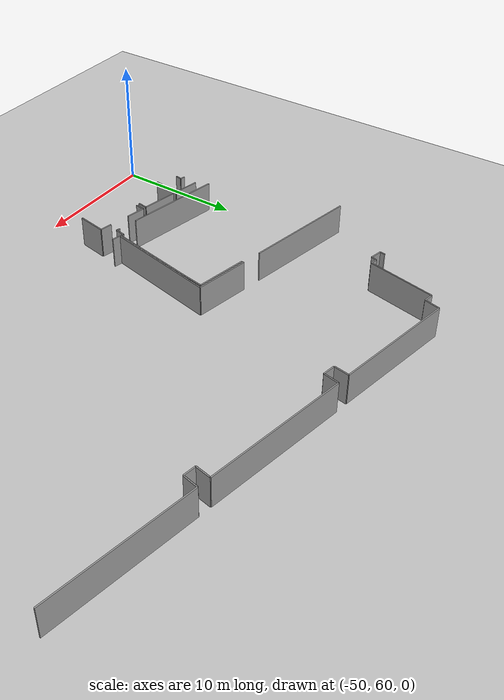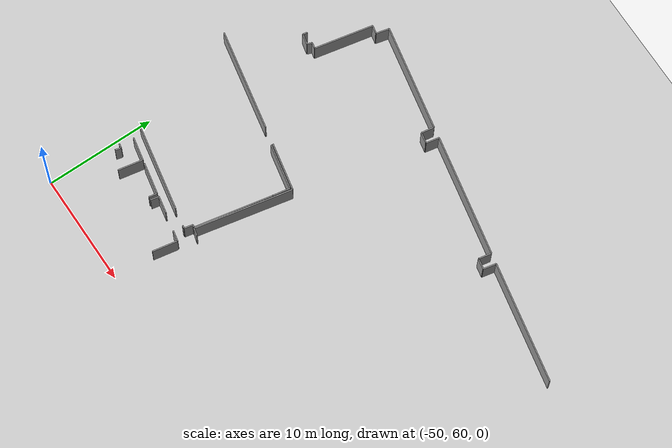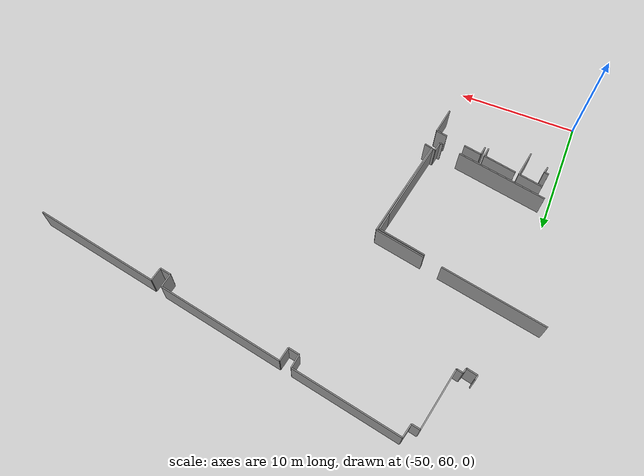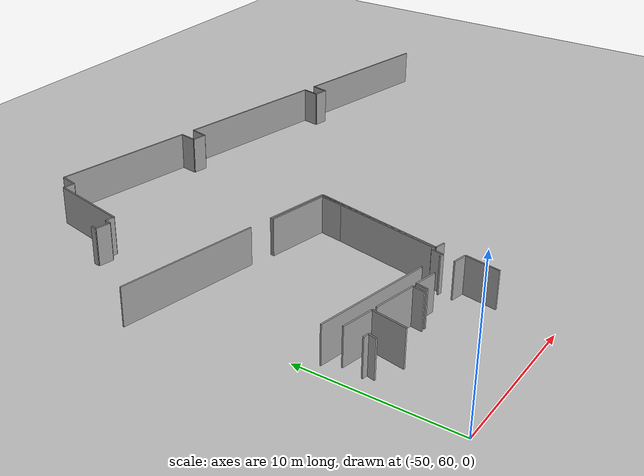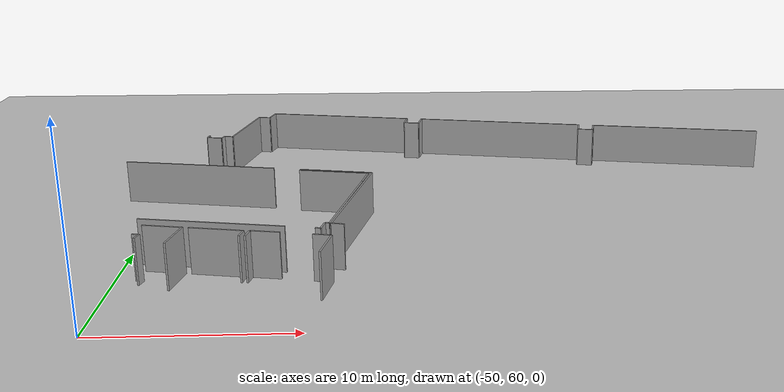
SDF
<sdf version="1.6">
 <world name="default">
  <model name="ground_plane">
   <static>1</static>
   <link name="link">
    <collision name="collision">
     <geometry><plane><normal>0 0 1</normal><size>100 100</size></plane></geometry>
     <surface><friction><ode><mu>100</mu><mu2>50</mu2></ode></friction></surface>
    </collision>
    <visual name="visual">
     <cast_shadows>0</cast_shadows>
     <geometry><plane><normal>0 0 1</normal><size>100 100</size></plane></geometry>
     <material>
      <script><uri>file://media/materials/scripts/gazebo.material</uri><name>Gazebo/Grey</name></script>
     </material>
    </visual>
   </link>
  </model>
  <model name="0510045922_A-40">
   <static>1</static>
   <link name="Wall_113">
    <collision name="Wall_113_Collision">
     <geometry><box><size>4.13901485271 0.1 2.5</size></box></geometry>
     <pose>2.06950742636 0 1.25 0 0 0</pose>
    </collision>
    <visual name="Wall_113_Visual">
     <pose>2.06950742636 0 1.25 0 0 0</pose>
     <geometry><box><size>4.13901485271 0.1 2.5</size></box></geometry>
     <material>
      <script><uri>file://media/materials/scripts/gazebo.material</uri><name>Gazebo/Grey</name></script>
      <ambient>1 1 1 1</ambient>
     </material>
    </visual>
    <pose>92.3843680498 -24.1988689077 0 0 0 -0.196672947007</pose>
   </link>
   <link name="Wall_114">
    <collision name="Wall_114_Collision">
     <geometry><box><size>1.57245915888 0.1 2.5</size></box></geometry>
     <pose>0.786229579441 0 1.25 0 0 0</pose>
    </collision>
    <visual name="Wall_114_Visual">
     <pose>0.786229579441 0 1.25 0 0 0</pose>
     <geometry><box><size>1.57245915888 0.1 2.5</size></box></geometry>
     <material>
      <script><uri>file://media/materials/scripts/gazebo.material</uri><name>Gazebo/Grey</name></script>
      <ambient>1 1 1 1</ambient>
     </material>
    </visual>
    <pose>96.4435915359 -25.0076634683 0 0 0 -1.74200392555</pose>
   </link>
   <link name="Wall_115">
    <collision name="Wall_115_Collision">
     <geometry><box><size>7.15501788834 0.1 2.5</size></box></geometry>
     <pose>3.57750894417 0 1.25 0 0 0</pose>
    </collision>
    <visual name="Wall_115_Visual">
     <pose>3.57750894417 0 1.25 0 0 0</pose>
     <geometry><box><size>7.15501788834 0.1 2.5</size></box></geometry>
     <material>
      <script><uri>file://media/materials/scripts/gazebo.material</uri><name>Gazebo/Grey</name></script>
      <ambient>1 1 1 1</ambient>
     </material>
    </visual>
    <pose>96.1756878694 -26.5571328716 0 0 0 -1.76360763908</pose>
   </link>
   <link name="Wall_116">
    <collision name="Wall_116_Collision">
     <geometry><box><size>0.23364936342 0.1 2.5</size></box></geometry>
     <pose>0.11682468171 0 1.25 0 0 0</pose>
    </collision>
    <visual name="Wall_116_Visual">
     <pose>0.11682468171 0 1.25 0 0 0</pose>
     <geometry><box><size>0.23364936342 0.1 2.5</size></box></geometry>
     <material>
      <script><uri>file://media/materials/scripts/gazebo.material</uri><name>Gazebo/Grey</name></script>
      <ambient>1 1 1 1</ambient>
     </material>
    </visual>
    <pose>94.8046514583 -33.5795640846 0 0 0 2.95337114828</pose>
   </link>
   <link name="Wall_117">
    <collision name="Wall_117_Collision">
     <geometry><box><size>0.800221337031 0.1 2.5</size></box></geometry>
     <pose>0.400110668516 0 1.25 0 0 0</pose>
    </collision>
    <visual name="Wall_117_Visual">
     <pose>0.400110668516 0 1.25 0 0 0</pose>
     <geometry><box><size>0.800221337031 0.1 2.5</size></box></geometry>
     <material>
      <script><uri>file://media/materials/scripts/gazebo.material</uri><name>Gazebo/Grey</name></script>
      <ambient>1 1 1 1</ambient>
     </material>
    </visual>
    <pose>94.5751286776 -33.5358454597 0 0 0 -1.77161802411</pose>
   </link>
   <link name="Wall_118">
    <collision name="Wall_118_Collision">
     <geometry><box><size>0.281087829553 0.1 2.5</size></box></geometry>
     <pose>0.140543914777 0 1.25 0 0 0</pose>
    </collision>
    <visual name="Wall_118_Visual">
     <pose>0.140543914777 0 1.25 0 0 0</pose>
     <geometry><box><size>0.281087829553 0.1 2.5</size></box></geometry>
     <material>
      <script><uri>file://media/materials/scripts/gazebo.material</uri><name>Gazebo/Grey</name></script>
      <ambient>1 1 1 1</ambient>
     </material>
    </visual>
    <pose>94.4155048612 -34.3199847493 0 0 0 2.96157739385</pose>
   </link>
   <link name="Wall_119">
    <collision name="Wall_119_Collision">
     <geometry><box><size>7.84579659776 0.1 2.5</size></box></geometry>
     <pose>3.92289829888 0 1.25 0 0 0</pose>
    </collision>
    <visual name="Wall_119_Visual">
     <pose>3.92289829888 0 1.25 0 0 0</pose>
     <geometry><box><size>7.84579659776 0.1 2.5</size></box></geometry>
     <material>
      <script><uri>file://media/materials/scripts/gazebo.material</uri><name>Gazebo/Grey</name></script>
      <ambient>1 1 1 1</ambient>
     </material>
    </visual>
    <pose>92.5940649425 -33.9654063672 0 0 0 2.95299683101</pose>
   </link>
   <link name="Wall_128">
    <collision name="Wall_128_Collision">
     <geometry><box><size>8.90903179599 0.1 2.5</size></box></geometry>
     <pose>4.454515898 0 1.25 0 0 0</pose>
    </collision>
    <visual name="Wall_128_Visual">
     <pose>4.454515898 0 1.25 0 0 0</pose>
     <geometry><box><size>8.90903179599 0.1 2.5</size></box></geometry>
     <material>
      <script><uri>file://media/materials/scripts/gazebo.material</uri><name>Gazebo/Grey</name></script>
      <ambient>1 1 1 1</ambient>
     </material>
    </visual>
    <pose>94.8920887081 -33.6123530533 0 0 0 1.37112908634</pose>
   </link>
   <link name="Wall_129">
    <collision name="Wall_129_Collision">
     <geometry><box><size>4.34264465938 0.1 2.5</size></box></geometry>
     <pose>2.17132232969 0 1.25 0 0 0</pose>
    </collision>
    <visual name="Wall_129_Visual">
     <pose>2.17132232969 0 1.25 0 0 0</pose>
     <geometry><box><size>4.34264465938 0.1 2.5</size></box></geometry>
     <material>
      <script><uri>file://media/materials/scripts/gazebo.material</uri><name>Gazebo/Grey</name></script>
      <ambient>1 1 1 1</ambient>
     </material>
    </visual>
    <pose>96.6591345237 -24.8803202643 0 0 0 2.94441519124</pose>
   </link>
   <link name="Wall_130">
    <collision name="Wall_130_Collision">
     <geometry><box><size>9.23882709731 0.1 2.5</size></box></geometry>
     <pose>4.61941354865 0 1.25 0 0 0</pose>
    </collision>
    <visual name="Wall_130_Visual">
     <pose>4.61941354865 0 1.25 0 0 0</pose>
     <geometry><box><size>9.23882709731 0.1 2.5</size></box></geometry>
     <material>
      <script><uri>file://media/materials/scripts/gazebo.material</uri><name>Gazebo/Grey</name></script>
      <ambient>1 1 1 1</ambient>
     </material>
    </visual>
    <pose>90.832356866 -23.7253351973 0 0 0 2.94931208345</pose>
   </link>
   <link name="Wall_135">
    <collision name="Wall_135_Collision">
     <geometry><box><size>0.41157085925 0.1 2.5</size></box></geometry>
     <pose>0.205785429625 0 1.25 0 0 0</pose>
    </collision>
    <visual name="Wall_135_Visual">
     <pose>0.205785429625 0 1.25 0 0 0</pose>
     <geometry><box><size>0.41157085925 0.1 2.5</size></box></geometry>
     <material>
      <script><uri>file://media/materials/scripts/gazebo.material</uri><name>Gazebo/Grey</name></script>
      <ambient>1 1 1 1</ambient>
     </material>
    </visual>
    <pose>85.697197687 -16.0420410498 0 0 0 -1.75777559671</pose>
   </link>
   <link name="Wall_136">
    <collision name="Wall_136_Collision">
     <geometry><box><size>0.956909104474 0.1 2.5</size></box></geometry>
     <pose>0.478454552237 0 1.25 0 0 0</pose>
    </collision>
    <visual name="Wall_136_Visual">
     <pose>0.478454552237 0 1.25 0 0 0</pose>
     <geometry><box><size>0.956909104474 0.1 2.5</size></box></geometry>
     <material>
      <script><uri>file://media/materials/scripts/gazebo.material</uri><name>Gazebo/Grey</name></script>
      <ambient>1 1 1 1</ambient>
     </material>
    </visual>
    <pose>85.6206900934 -16.4464383301 0 0 0 -0.218755378787</pose>
   </link>
   <link name="Wall_137">
    <collision name="Wall_137_Collision">
     <geometry><box><size>0.456160383999 0.1 2.5</size></box></geometry>
     <pose>0.228080192 0 1.25 0 0 0</pose>
    </collision>
    <visual name="Wall_137_Visual">
     <pose>0.228080192 0 1.25 0 0 0</pose>
     <geometry><box><size>0.456160383999 0.1 2.5</size></box></geometry>
     <material>
      <script><uri>file://media/materials/scripts/gazebo.material</uri><name>Gazebo/Grey</name></script>
      <ambient>1 1 1 1</ambient>
     </material>
    </visual>
    <pose>86.5547944335 -16.6541017983 0 0 0 1.24111642317</pose>
   </link>
   <link name="Wall_138">
    <collision name="Wall_138_Collision">
     <geometry><box><size>0.542824649169 0.1 2.5</size></box></geometry>
     <pose>0.271412324584 0 1.25 0 0 0</pose>
    </collision>
    <visual name="Wall_138_Visual">
     <pose>0.271412324584 0 1.25 0 0 0</pose>
     <geometry><box><size>0.542824649169 0.1 2.5</size></box></geometry>
     <material>
      <script><uri>file://media/materials/scripts/gazebo.material</uri><name>Gazebo/Grey</name></script>
      <ambient>1 1 1 1</ambient>
     </material>
    </visual>
    <pose>86.7024718816 -16.2225074665 0 0 0 -0.207038019744</pose>
   </link>
   <link name="Wall_139">
    <collision name="Wall_139_Collision">
     <geometry><box><size>5.36130718015 0.1 2.5</size></box></geometry>
     <pose>2.68065359008 0 1.25 0 0 0</pose>
    </collision>
    <visual name="Wall_139_Visual">
     <pose>2.68065359008 0 1.25 0 0 0</pose>
     <geometry><box><size>5.36130718015 0.1 2.5</size></box></geometry>
     <material>
      <script><uri>file://media/materials/scripts/gazebo.material</uri><name>Gazebo/Grey</name></script>
      <ambient>1 1 1 1</ambient>
     </material>
    </visual>
    <pose>87.2337040097 -16.3340916312 0 0 0 1.37144822554</pose>
   </link>
   <link name="Wall_140">
    <collision name="Wall_140_Collision">
     <geometry><box><size>0.755453131816 0.1 2.5</size></box></geometry>
     <pose>0.377726565908 0 1.25 0 0 0</pose>
    </collision>
    <visual name="Wall_140_Visual">
     <pose>0.377726565908 0 1.25 0 0 0</pose>
     <geometry><box><size>0.755453131816 0.1 2.5</size></box></geometry>
     <material>
      <script><uri>file://media/materials/scripts/gazebo.material</uri><name>Gazebo/Grey</name></script>
      <ambient>1 1 1 1</ambient>
     </material>
    </visual>
    <pose>88.2954057317 -11.0789604118 0 0 0 -0.196405787821</pose>
   </link>
   <link name="Wall_141">
    <collision name="Wall_141_Collision">
     <geometry><box><size>1.20443350002 0.1 2.5</size></box></geometry>
     <pose>0.602216750008 0 1.25 0 0 0</pose>
    </collision>
    <visual name="Wall_141_Visual">
     <pose>0.602216750008 0 1.25 0 0 0</pose>
     <geometry><box><size>1.20443350002 0.1 2.5</size></box></geometry>
     <material>
      <script><uri>file://media/materials/scripts/gazebo.material</uri><name>Gazebo/Grey</name></script>
      <ambient>1 1 1 1</ambient>
     </material>
    </visual>
    <pose>89.0363347525 -11.2263836818 0 0 0 1.33825559718</pose>
   </link>
   <link name="Wall_142">
    <collision name="Wall_142_Collision">
     <geometry><box><size>9.59289468386 0.1 2.5</size></box></geometry>
     <pose>4.79644734193 0 1.25 0 0 0</pose>
    </collision>
    <visual name="Wall_142_Visual">
     <pose>4.79644734193 0 1.25 0 0 0</pose>
     <geometry><box><size>9.59289468386 0.1 2.5</size></box></geometry>
     <material>
      <script><uri>file://media/materials/scripts/gazebo.material</uri><name>Gazebo/Grey</name></script>
      <ambient>1 1 1 1</ambient>
     </material>
    </visual>
    <pose>89.313897185 -10.0543686853 0 0 0 -0.19370611494</pose>
   </link>
   <link name="Wall_143">
    <collision name="Wall_143_Collision">
     <geometry><box><size>1.17226380109 0.1 2.5</size></box></geometry>
     <pose>0.586131900546 0 1.25 0 0 0</pose>
    </collision>
    <visual name="Wall_143_Visual">
     <pose>0.586131900546 0 1.25 0 0 0</pose>
     <geometry><box><size>1.17226380109 0.1 2.5</size></box></geometry>
     <material>
      <script><uri>file://media/materials/scripts/gazebo.material</uri><name>Gazebo/Grey</name></script>
      <ambient>1 1 1 1</ambient>
     </material>
    </visual>
    <pose>98.7273813306 -11.900972231 0 0 0 -1.72535791939</pose>
   </link>
   <link name="Wall_144">
    <collision name="Wall_144_Collision">
     <geometry><box><size>0.978233878016 0.1 2.5</size></box></geometry>
     <pose>0.489116939008 0 1.25 0 0 0</pose>
    </collision>
    <visual name="Wall_144_Visual">
     <pose>0.489116939008 0 1.25 0 0 0</pose>
     <geometry><box><size>0.978233878016 0.1 2.5</size></box></geometry>
     <material>
      <script><uri>file://media/materials/scripts/gazebo.material</uri><name>Gazebo/Grey</name></script>
      <ambient>1 1 1 1</ambient>
     </material>
    </visual>
    <pose>98.5469149139 -13.0592616128 0 0 0 -0.1932170273</pose>
   </link>
   <link name="Wall_145">
    <collision name="Wall_145_Collision">
     <geometry><box><size>1.20000990063 0.1 2.5</size></box></geometry>
     <pose>0.600004950317 0 1.25 0 0 0</pose>
    </collision>
    <visual name="Wall_145_Visual">
     <pose>0.600004950317 0 1.25 0 0 0</pose>
     <geometry><box><size>1.20000990063 0.1 2.5</size></box></geometry>
     <material>
      <script><uri>file://media/materials/scripts/gazebo.material</uri><name>Gazebo/Grey</name></script>
      <ambient>1 1 1 1</ambient>
     </material>
    </visual>
    <pose>99.5069454153 -13.247099193 0 0 0 1.37726399701</pose>
   </link>
   <link name="Wall_146">
    <collision name="Wall_146_Collision">
     <geometry><box><size>10.9931287266 0.1 2.5</size></box></geometry>
     <pose>5.49656436331 0 1.25 0 0 0</pose>
    </collision>
    <visual name="Wall_146_Visual">
     <pose>5.49656436331 0 1.25 0 0 0</pose>
     <geometry><box><size>10.9931287266 0.1 2.5</size></box></geometry>
     <material>
      <script><uri>file://media/materials/scripts/gazebo.material</uri><name>Gazebo/Grey</name></script>
      <ambient>1 1 1 1</ambient>
     </material>
    </visual>
    <pose>99.7377390862 -12.0694922793 0 0 0 -0.194166985388</pose>
   </link>
   <link name="Wall_147">
    <collision name="Wall_147_Collision">
     <geometry><box><size>1.18187057142 0.1 2.5</size></box></geometry>
     <pose>0.590935285709 0 1.25 0 0 0</pose>
    </collision>
    <visual name="Wall_147_Visual">
     <pose>0.590935285709 0 1.25 0 0 0</pose>
     <geometry><box><size>1.18187057142 0.1 2.5</size></box></geometry>
     <material>
      <script><uri>file://media/materials/scripts/gazebo.material</uri><name>Gazebo/Grey</name></script>
      <ambient>1 1 1 1</ambient>
     </material>
    </visual>
    <pose>110.524293067 -14.190608121 0 0 0 -1.74916865966</pose>
   </link>
   <link name="Wall_148">
    <collision name="Wall_148_Collision">
     <geometry><box><size>0.963656575861 0.1 2.5</size></box></geometry>
     <pose>0.48182828793 0 1.25 0 0 0</pose>
    </collision>
    <visual name="Wall_148_Visual">
     <pose>0.48182828793 0 1.25 0 0 0</pose>
     <geometry><box><size>0.963656575861 0.1 2.5</size></box></geometry>
     <material>
      <script><uri>file://media/materials/scripts/gazebo.material</uri><name>Gazebo/Grey</name></script>
      <ambient>1 1 1 1</ambient>
     </material>
    </visual>
    <pose>110.314596175 -15.3537268857 0 0 0 -0.188653348136</pose>
   </link>
   <link name="Wall_149">
    <collision name="Wall_149_Collision">
     <geometry><box><size>1.17891506961 0.1 2.5</size></box></geometry>
     <pose>0.589457534804 0 1.25 0 0 0</pose>
    </collision>
    <visual name="Wall_149_Visual">
     <pose>0.589457534804 0 1.25 0 0 0</pose>
     <geometry><box><size>1.17891506961 0.1 2.5</size></box></geometry>
     <material>
      <script><uri>file://media/materials/scripts/gazebo.material</uri><name>Gazebo/Grey</name></script>
      <ambient>1 1 1 1</ambient>
     </material>
    </visual>
    <pose>111.261155239 -15.5344474805 0 0 0 1.37331620035</pose>
   </link>
   <link name="Wall_150">
    <collision name="Wall_150_Collision">
     <geometry><box><size>10.92732482 0.1 2.5</size></box></geometry>
     <pose>5.46366240998 0 1.25 0 0 0</pose>
    </collision>
    <visual name="Wall_150_Visual">
     <pose>5.46366240998 0 1.25 0 0 0</pose>
     <geometry><box><size>10.92732482 0.1 2.5</size></box></geometry>
     <material>
      <script><uri>file://media/materials/scripts/gazebo.material</uri><name>Gazebo/Grey</name></script>
      <ambient>1 1 1 1</ambient>
     </material>
    </visual>
    <pose>111.492457266 -14.3784457012 0 0 0 -0.192103831572</pose>
   </link>
   <link name="Wall_213">
    <collision name="Wall_213_Collision">
     <geometry><box><size>0.68638075614 0.1 2.5</size></box></geometry>
     <pose>0.34319037807 0 1.25 0 0 0</pose>
    </collision>
    <visual name="Wall_213_Visual">
     <pose>0.34319037807 0 1.25 0 0 0</pose>
     <geometry><box><size>0.68638075614 0.1 2.5</size></box></geometry>
     <material>
      <script><uri>file://media/materials/scripts/gazebo.material</uri><name>Gazebo/Grey</name></script>
      <ambient>1 1 1 1</ambient>
     </material>
    </visual>
    <pose>95.5577810256 -33.7796022113 0 0 0 2.89544639624</pose>
   </link>
   <link name="Wall_707">
    <collision name="Wall_707_Collision">
     <geometry><box><size>2.8780492913 0.1 2.5</size></box></geometry>
     <pose>1.43902464565 0 1.25 0 0 0</pose>
    </collision>
    <visual name="Wall_707_Visual">
     <pose>1.43902464565 0 1.25 0 0 0</pose>
     <geometry><box><size>2.8780492913 0.1 2.5</size></box></geometry>
     <material>
      <script><uri>file://media/materials/scripts/gazebo.material</uri><name>Gazebo/Grey</name></script>
      <ambient>1 1 1 1</ambient>
     </material>
    </visual>
    <pose>87.7817118892 -33.9608311622 0 0 0 -0.196529549259</pose>
   </link>
   <link name="Wall_708">
    <collision name="Wall_708_Collision">
     <geometry><box><size>0.772969497232 0.1 2.5</size></box></geometry>
     <pose>0.386484748616 0 1.25 0 0 0</pose>
    </collision>
    <visual name="Wall_708_Visual">
     <pose>0.386484748616 0 1.25 0 0 0</pose>
     <geometry><box><size>0.772969497232 0.1 2.5</size></box></geometry>
     <material>
      <script><uri>file://media/materials/scripts/gazebo.material</uri><name>Gazebo/Grey</name></script>
      <ambient>1 1 1 1</ambient>
     </material>
    </visual>
    <pose>90.6043591536 -34.5228188346 0 0 0 -1.73729650085</pose>
   </link>
   <link name="Wall_711">
    <collision name="Wall_711_Collision">
     <geometry><box><size>1.54364090754 0.1 2.5</size></box></geometry>
     <pose>0.771820453772 0 1.25 0 0 0</pose>
    </collision>
    <visual name="Wall_711_Visual">
     <pose>0.771820453772 0 1.25 0 0 0</pose>
     <geometry><box><size>1.54364090754 0.1 2.5</size></box></geometry>
     <material>
      <script><uri>file://media/materials/scripts/gazebo.material</uri><name>Gazebo/Grey</name></script>
      <ambient>1 1 1 1</ambient>
     </material>
    </visual>
    <pose>90.9230984305 -34.544678147 0 0 0 -0.190678616368</pose>
   </link>
   <link name="Wall_712">
    <collision name="Wall_712_Collision">
     <geometry><box><size>0.966113254152 0.1 2.5</size></box></geometry>
     <pose>0.483056627076 0 1.25 0 0 0</pose>
    </collision>
    <visual name="Wall_712_Visual">
     <pose>0.483056627076 0 1.25 0 0 0</pose>
     <geometry><box><size>0.966113254152 0.1 2.5</size></box></geometry>
     <material>
      <script><uri>file://media/materials/scripts/gazebo.material</uri><name>Gazebo/Grey</name></script>
      <ambient>1 1 1 1</ambient>
     </material>
    </visual>
    <pose>94.0863442842 -35.1798690983 0 0 0 -0.198891869553</pose>
   </link>
   <link name="Wall_713">
    <collision name="Wall_713_Collision">
     <geometry><box><size>2.28696763836 0.1 2.5</size></box></geometry>
     <pose>1.14348381918 0 1.25 0 0 0</pose>
    </collision>
    <visual name="Wall_713_Visual">
     <pose>1.14348381918 0 1.25 0 0 0</pose>
     <geometry><box><size>2.28696763836 0.1 2.5</size></box></geometry>
     <material>
      <script><uri>file://media/materials/scripts/gazebo.material</uri><name>Gazebo/Grey</name></script>
      <ambient>1 1 1 1</ambient>
     </material>
    </visual>
    <pose>95.0334117049 -35.3707568151 0 0 0 -1.74900958749</pose>
   </link>
   <link name="Wall_717">
    <collision name="Wall_717_Collision">
     <geometry><box><size>0.767103885742 0.1 2.5</size></box></geometry>
     <pose>0.383551942871 0 1.25 0 0 0</pose>
    </collision>
    <visual name="Wall_717_Visual">
     <pose>0.383551942871 0 1.25 0 0 0</pose>
     <geometry><box><size>0.767103885742 0.1 2.5</size></box></geometry>
     <material>
      <script><uri>file://media/materials/scripts/gazebo.material</uri><name>Gazebo/Grey</name></script>
      <ambient>1 1 1 1</ambient>
     </material>
    </visual>
    <pose>90.7799961873 -35.2983160704 0 0 0 1.38314831369</pose>
   </link>
   <link name="Wall_725">
    <collision name="Wall_725_Collision">
     <geometry><box><size>0.541842865693 0.1 2.5</size></box></geometry>
     <pose>0.270921432847 0 1.25 0 0 0</pose>
    </collision>
    <visual name="Wall_725_Visual">
     <pose>0.270921432847 0 1.25 0 0 0</pose>
     <geometry><box><size>0.541842865693 0.1 2.5</size></box></geometry>
     <material>
      <script><uri>file://media/materials/scripts/gazebo.material</uri><name>Gazebo/Grey</name></script>
      <ambient>1 1 1 1</ambient>
     </material>
    </visual>
    <pose>85.4168392959 -35.379653047 0 0 0 1.31614678529</pose>
   </link>
   <link name="Wall_726">
    <collision name="Wall_726_Collision">
     <geometry><box><size>0.392362746295 0.1 2.5</size></box></geometry>
     <pose>0.196181373148 0 1.25 0 0 0</pose>
    </collision>
    <visual name="Wall_726_Visual">
     <pose>0.196181373148 0 1.25 0 0 0</pose>
     <geometry><box><size>0.392362746295 0.1 2.5</size></box></geometry>
     <material>
      <script><uri>file://media/materials/scripts/gazebo.material</uri><name>Gazebo/Grey</name></script>
      <ambient>1 1 1 1</ambient>
     </material>
    </visual>
    <pose>85.5533329097 -34.8552837263 0 0 0 2.93873405572</pose>
   </link>
   <link name="Wall_728">
    <collision name="Wall_728_Collision">
     <geometry><box><size>2.13720457336 0.1 2.5</size></box></geometry>
     <pose>1.06860228668 0 1.25 0 0 0</pose>
    </collision>
    <visual name="Wall_728_Visual">
     <pose>1.06860228668 0 1.25 0 0 0</pose>
     <geometry><box><size>2.13720457336 0.1 2.5</size></box></geometry>
     <material>
      <script><uri>file://media/materials/scripts/gazebo.material</uri><name>Gazebo/Grey</name></script>
      <ambient>1 1 1 1</ambient>
     </material>
    </visual>
    <pose>85.3642244392 -33.4883141641 0 0 0 -0.199214842258</pose>
   </link>
   <link name="Wall_729">
    <collision name="Wall_729_Collision">
     <geometry><box><size>2.25774529723 0.1 2.5</size></box></geometry>
     <pose>1.12887264861 0 1.25 0 0 0</pose>
    </collision>
    <visual name="Wall_729_Visual">
     <pose>1.12887264861 0 1.25 0 0 0</pose>
     <geometry><box><size>2.25774529723 0.1 2.5</size></box></geometry>
     <material>
      <script><uri>file://media/materials/scripts/gazebo.material</uri><name>Gazebo/Grey</name></script>
      <ambient>1 1 1 1</ambient>
     </material>
    </visual>
    <pose>87.4591599415 -33.9112664421 0 0 0 -1.75454673463</pose>
   </link>
   <pose>-134.15 101.210036856 0 0 0 0</pose>
  </model>
 </world>
</sdf>
